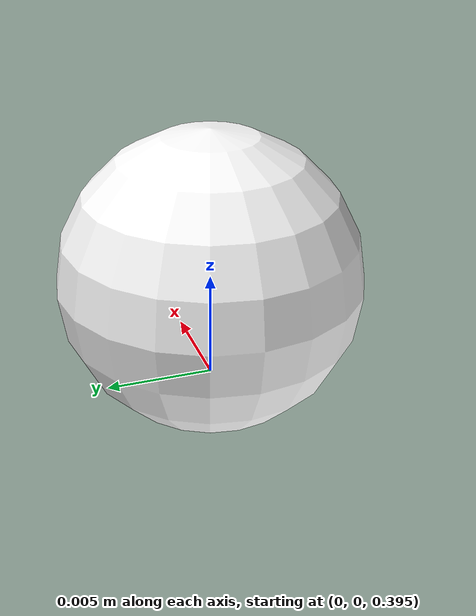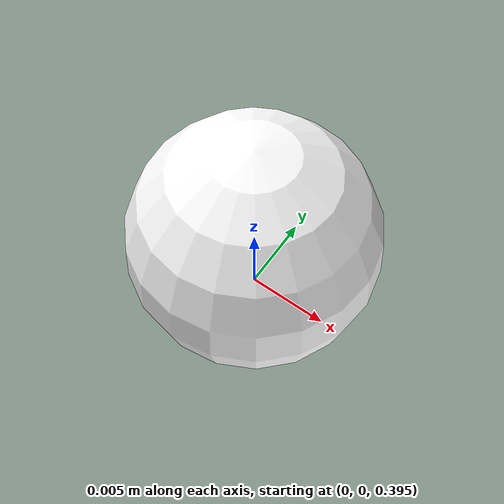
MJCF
<mujoco model="screen">
  <asset>
    <mesh file="meshes/monitor.obj" name="monitor_mesh" scale="0.012 0.012 0.012"/>
    <texture file="../textures/monitor.png" name="tex-monitor" type="2d"/>
    <material name="monitor" reflectance="0.5" texrepeat="1 1" texture="tex-monitor" texuniform="true"/>
  </asset>
  <worldbody>
    <body>
      <body name="object">
        <geom pos="0 0 0.4" size="0.007 0.007 0.007" rgba="1 1 1 1" type="sphere" group="1" mass="1"/>
      </body>
      <site rgba="0 0 0 0" size="0.005" pos="0 0 -0.085" name="bottom_site"/>
      <site rgba="0 0 0 0" size="0.005" pos="0 0 0.075" name="top_site"/>
      <site rgba="0 0 0 0" size="0.005" pos="0.025 0.025 0" name="horizontal_radius_site"/>
    </body>
  </worldbody>
</mujoco>
